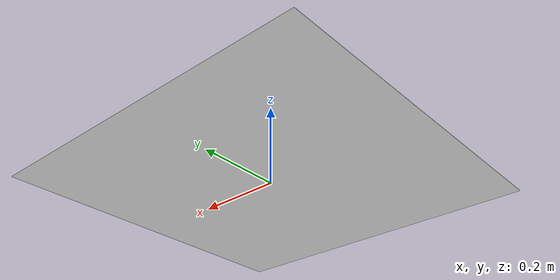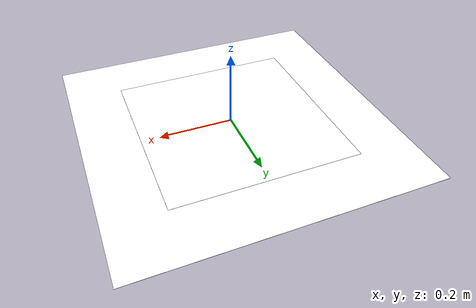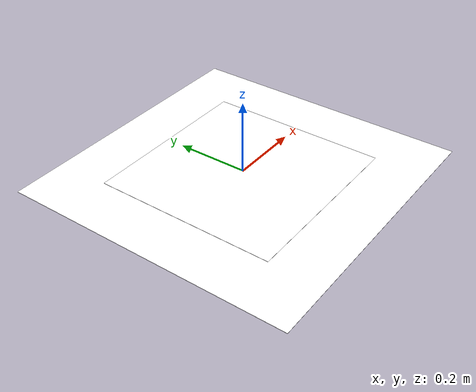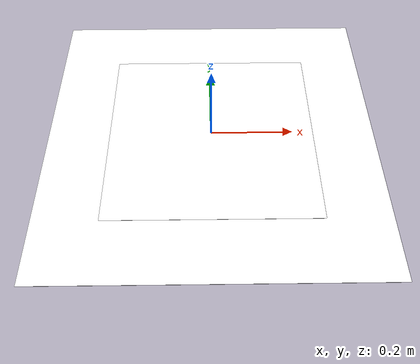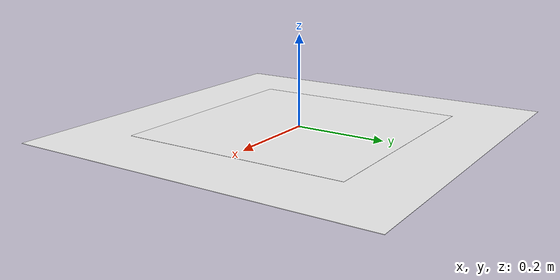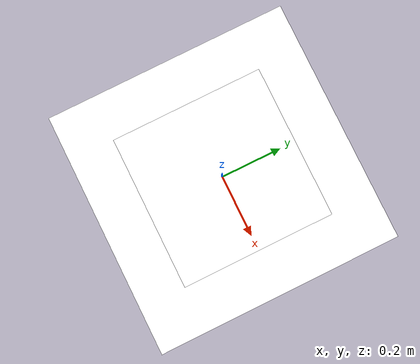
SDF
<?xml version="1.0" ?>
<sdf version="1.9">
  <model name="airpost_landing_marker">
    <static>true</static>
    <link name="base">
      <visual name="quiet_zone">
        <geometry><plane><normal>0 0 1</normal><size>0.8 0.8</size></plane></geometry>
        <material><ambient>1 1 1 1</ambient><diffuse>1 1 1 1</diffuse><specular>0.3 0.3 0.3 1</specular></material>
      </visual>
      <visual name="marker">
        <pose>0 0 0.002 0 0 0</pose>
        <geometry><plane><normal>0 0 1</normal><size>0.5 0.5</size></plane></geometry>
        <material>
          <ambient>1 1 1 1</ambient><diffuse>1 1 1 1</diffuse>
          <pbr><metal><albedo_map>model://arucotag/arucotag.png</albedo_map></metal></pbr>
        </material>
      </visual>
    </link>
  </model>
</sdf>
